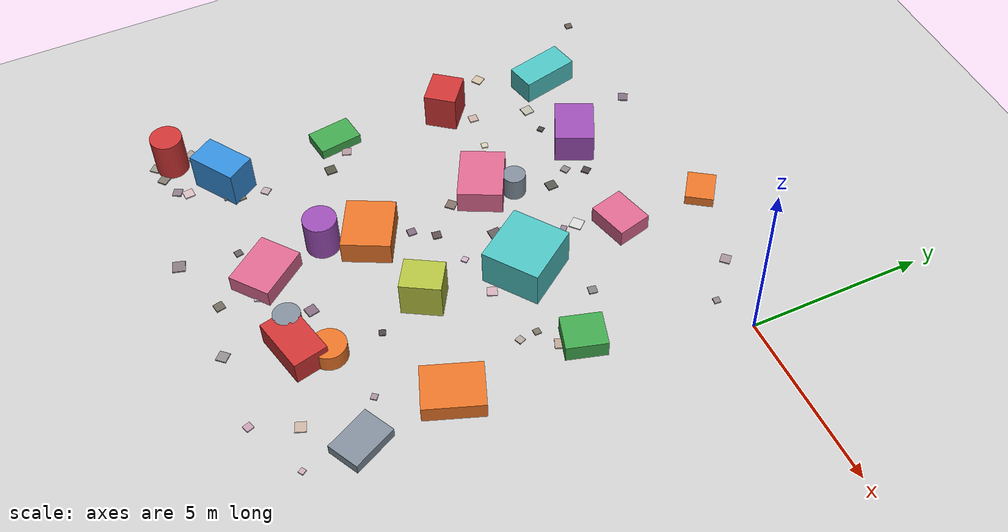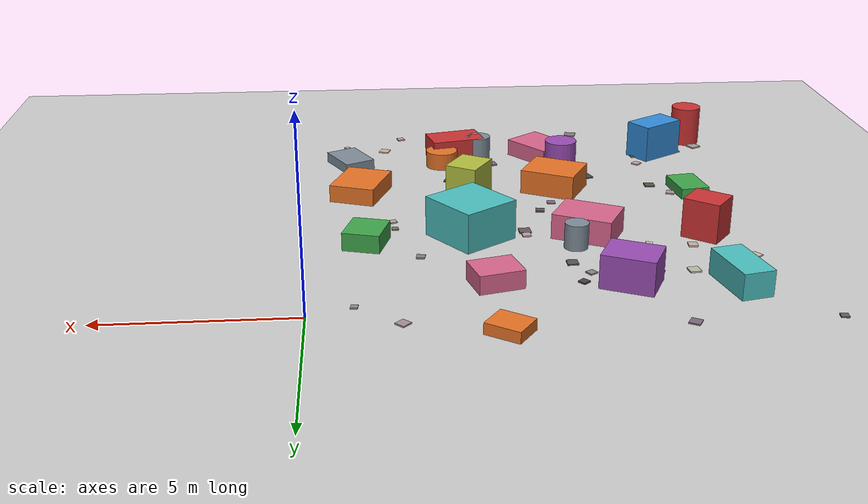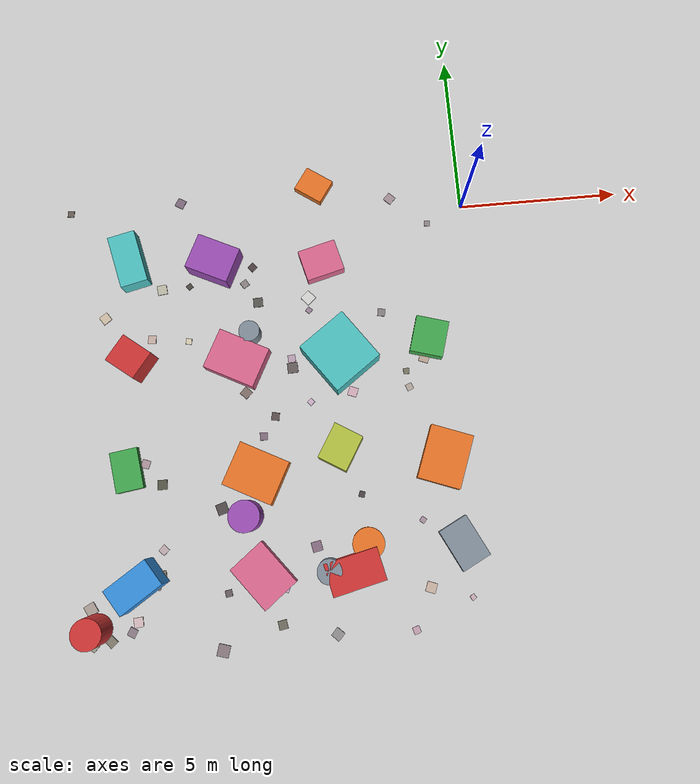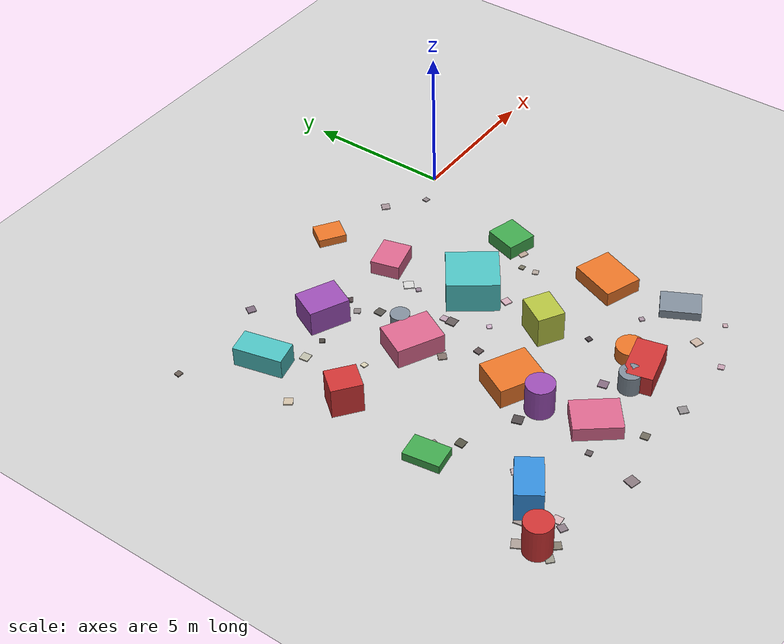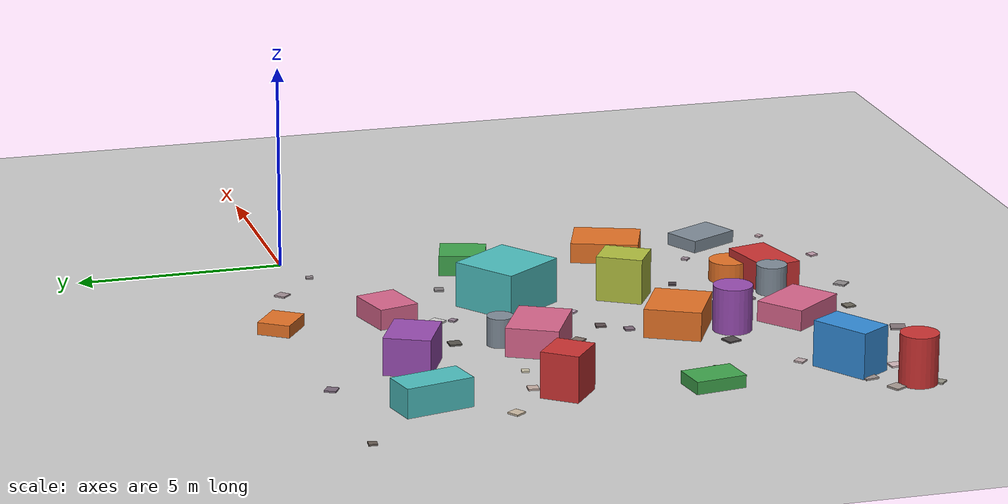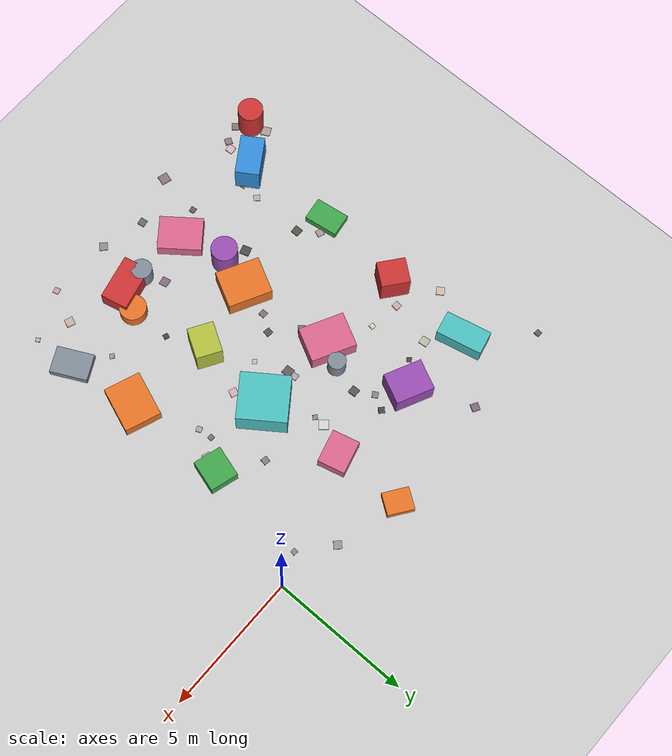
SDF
<sdf version="1.6">
 <world name="town_world">
  <model name="ground_plane">
   <static>true</static>
   <link name="link">
    <collision name="collision">
     <geometry><plane><normal>0 0 1</normal><size>60 60</size></plane></geometry>
     <surface><friction><ode><mu>1.0</mu><mu2>1.0</mu2></ode></friction></surface>
    </collision>
    <visual name="visual">
     <cast_shadows>false</cast_shadows>
     <geometry><plane><normal>0 0 1</normal><size>60 60</size></plane></geometry>
     <material>
      <script><uri>file://media/materials/scripts/gazebo.material</uri><name>Gazebo/CheckerBoard</name></script>
     </material>
    </visual>
   </link>
  </model>
  <model name="bld_0">
   <static>true</static>
   <pose>-10.68 -10.85 0.55 0 0 0.574</pose>
   <link name="l">
    <collision name="c"><geometry><box><size>1.45 0.87 1.10</size></box></geometry></collision>
    <visual name="v">
     <geometry><box><size>1.45 0.87 1.10</size></box></geometry>
     <material><ambient>0.2 0.55 0.85 1</ambient><diffuse>0.2 0.55 0.85 1</diffuse></material>
    </visual>
   </link>
  </model>
  <model name="bld_1">
   <static>true</static>
   <pose>-10.94 -7.49 0.15 0 0 0.142</pose>
   <link name="l">
    <collision name="c"><geometry><box><size>0.84 1.23 0.30</size></box></geometry></collision>
    <visual name="v">
     <geometry><box><size>0.84 1.23 0.30</size></box></geometry>
     <material><ambient>0.25 0.65 0.3 1</ambient><diffuse>0.25 0.65 0.3 1</diffuse></material>
    </visual>
   </link>
  </model>
  <model name="bld_2">
   <static>true</static>
   <pose>-10.58 -4.17 0.55 0 0 0.906</pose>
   <link name="l">
    <collision name="c"><geometry><box><size>0.92 1.02 1.10</size></box></geometry></collision>
    <visual name="v">
     <geometry><box><size>0.92 1.02 1.10</size></box></geometry>
     <material><ambient>0.8 0.2 0.2 1</ambient><diffuse>0.8 0.2 0.2 1</diffuse></material>
    </visual>
   </link>
  </model>
  <model name="bld_3">
   <static>true</static>
   <pose>-10.60 -1.02 0.35 0 0 0.226</pose>
   <link name="l">
    <collision name="c"><geometry><box><size>0.85 1.66 0.70</size></box></geometry></collision>
    <visual name="v">
     <geometry><box><size>0.85 1.66 0.70</size></box></geometry>
     <material><ambient>0.3 0.75 0.75 1</ambient><diffuse>0.3 0.75 0.75 1</diffuse></material>
    </visual>
   </link>
  </model>
  <model name="bld_8">
   <static>true</static>
   <pose>-7.02 -10.88 0.25 0 0 0.662</pose>
   <link name="l">
    <collision name="c"><geometry><box><size>1.22 1.56 0.50</size></box></geometry></collision>
    <visual name="v">
     <geometry><box><size>1.22 1.56 0.50</size></box></geometry>
     <material><ambient>0.85 0.4 0.55 1</ambient><diffuse>0.85 0.4 0.55 1</diffuse></material>
    </visual>
   </link>
  </model>
  <model name="bld_9">
   <static>true</static>
   <pose>-7.04 -7.92 0.35 0 0 1.092</pose>
   <link name="l">
    <collision name="c"><geometry><box><size>1.36 1.59 0.70</size></box></geometry></collision>
    <visual name="v">
     <geometry><box><size>1.36 1.59 0.70</size></box></geometry>
     <material><ambient>0.9 0.45 0.15 1</ambient><diffuse>0.9 0.45 0.15 1</diffuse></material>
    </visual>
   </link>
  </model>
  <model name="bld_10">
   <static>true</static>
   <pose>-7.41 -4.42 0.35 0 0 1.094</pose>
   <link name="l">
    <collision name="c"><geometry><box><size>1.26 1.64 0.70</size></box></geometry></collision>
    <visual name="v">
     <geometry><box><size>1.26 1.64 0.70</size></box></geometry>
     <material><ambient>0.85 0.4 0.55 1</ambient><diffuse>0.85 0.4 0.55 1</diffuse></material>
    </visual>
   </link>
  </model>
  <model name="bld_11">
   <static>true</static>
   <pose>-7.94 -1.27 0.45 0 0 1.125</pose>
   <link name="l">
    <collision name="c"><geometry><box><size>1.11 1.38 0.90</size></box></geometry></collision>
    <visual name="v">
     <geometry><box><size>1.11 1.38 0.90</size></box></geometry>
     <material><ambient>0.6 0.3 0.7 1</ambient><diffuse>0.6 0.3 0.7 1</diffuse></material>
    </visual>
   </link>
  </model>
  <model name="bld_16">
   <static>true</static>
   <pose>-4.34 -10.99 0.35 0 0 0.229</pose>
   <link name="l">
    <collision name="c"><geometry><box><size>1.63 0.98 0.70</size></box></geometry></collision>
    <visual name="v">
     <geometry><box><size>1.63 0.98 0.70</size></box></geometry>
     <material><ambient>0.8 0.2 0.2 1</ambient><diffuse>0.8 0.2 0.2 1</diffuse></material>
    </visual>
   </link>
  </model>
  <model name="bld_17">
   <static>true</static>
   <pose>-4.47 -7.39 0.55 0 0 1.028</pose>
   <link name="l">
    <collision name="c"><geometry><box><size>1.12 0.93 1.10</size></box></geometry></collision>
    <visual name="v">
     <geometry><box><size>1.12 0.93 1.10</size></box></geometry>
     <material><ambient>0.7 0.75 0.25 1</ambient><diffuse>0.7 0.75 0.25 1</diffuse></material>
    </visual>
   </link>
  </model>
  <model name="bld_18">
   <static>true</static>
   <pose>-4.26 -4.54 0.55 0 0 0.625</pose>
   <link name="l">
    <collision name="c"><geometry><box><size>1.67 1.75 1.10</size></box></geometry></collision>
    <visual name="v">
     <geometry><box><size>1.67 1.75 1.10</size></box></geometry>
     <material><ambient>0.3 0.75 0.75 1</ambient><diffuse>0.3 0.75 0.75 1</diffuse></material>
    </visual>
   </link>
  </model>
  <model name="bld_19">
   <static>true</static>
   <pose>-4.61 -1.52 0.25 0 0 0.255</pose>
   <link name="l">
    <collision name="c"><geometry><box><size>1.20 0.99 0.50</size></box></geometry></collision>
    <visual name="v">
     <geometry><box><size>1.20 0.99 0.50</size></box></geometry>
     <material><ambient>0.85 0.4 0.55 1</ambient><diffuse>0.85 0.4 0.55 1</diffuse></material>
    </visual>
   </link>
  </model>
  <model name="bld_20">
   <static>true</static>
   <pose>-4.66 1.05 0.15 0 0 0.964</pose>
   <link name="l">
    <collision name="c"><geometry><box><size>0.80 0.95 0.30</size></box></geometry></collision>
    <visual name="v">
     <geometry><box><size>0.80 0.95 0.30</size></box></geometry>
     <material><ambient>0.9 0.45 0.15 1</ambient><diffuse>0.9 0.45 0.15 1</diffuse></material>
    </visual>
   </link>
  </model>
  <model name="bld_24">
   <static>true</static>
   <pose>-1.05 -10.47 0.15 0 0 0.468</pose>
   <link name="l">
    <collision name="c"><geometry><box><size>0.95 1.34 0.30</size></box></geometry></collision>
    <visual name="v">
     <geometry><box><size>0.95 1.34 0.30</size></box></geometry>
     <material><ambient>0.5 0.55 0.6 1</ambient><diffuse>0.5 0.55 0.6 1</diffuse></material>
    </visual>
   </link>
  </model>
  <model name="bld_25">
   <static>true</static>
   <pose>-1.36 -7.91 0.25 0 0 1.212</pose>
   <link name="l">
    <collision name="c"><geometry><box><size>1.65 1.32 0.50</size></box></geometry></collision>
    <visual name="v">
     <geometry><box><size>1.65 1.32 0.50</size></box></geometry>
     <material><ambient>0.9 0.45 0.15 1</ambient><diffuse>0.9 0.45 0.15 1</diffuse></material>
    </visual>
   </link>
  </model>
  <model name="bld_26">
   <static>true</static>
   <pose>-1.47 -4.22 0.25 0 0 1.285</pose>
   <link name="l">
    <collision name="c"><geometry><box><size>1.13 1.02 0.50</size></box></geometry></collision>
    <visual name="v">
     <geometry><box><size>1.13 1.02 0.50</size></box></geometry>
     <material><ambient>0.25 0.65 0.3 1</ambient><diffuse>0.25 0.65 0.3 1</diffuse></material>
    </visual>
   </link>
  </model>
  <model name="landmark_0">
   <static>true</static>
   <pose>-12.00 -12.00 0.60 0 0 0</pose>
   <link name="l">
    <collision name="c">
     <geometry><cylinder><radius>0.45</radius><length>1.20</length></cylinder></geometry>
    </collision>
    <visual name="v">
     <geometry><cylinder><radius>0.45</radius><length>1.20</length></cylinder></geometry>
     <material><ambient>0.8 0.2 0.2 1</ambient><diffuse>0.8 0.2 0.2 1</diffuse></material>
    </visual>
   </link>
  </model>
  <model name="tank_1">
   <static>true</static>
   <pose>-7.41 -9.14 0.55 0 0 0</pose>
   <link name="l">
    <collision name="c">
     <geometry><cylinder><radius>0.47</radius><length>1.10</length></cylinder></geometry>
    </collision>
    <visual name="v">
     <geometry><cylinder><radius>0.47</radius><length>1.10</length></cylinder></geometry>
     <material><ambient>0.6 0.3 0.7 1</ambient><diffuse>0.6 0.3 0.7 1</diffuse></material>
    </visual>
   </link>
  </model>
  <model name="tank_3">
   <static>true</static>
   <pose>-5.08 -10.92 0.35 0 0 0</pose>
   <link name="l">
    <collision name="c">
     <geometry><cylinder><radius>0.37</radius><length>0.70</length></cylinder></geometry>
    </collision>
    <visual name="v">
     <geometry><cylinder><radius>0.37</radius><length>0.70</length></cylinder></geometry>
     <material><ambient>0.5 0.55 0.6 1</ambient><diffuse>0.5 0.55 0.6 1</diffuse></material>
    </visual>
   </link>
  </model>
  <model name="tank_4">
   <static>true</static>
   <pose>-3.88 -10.24 0.25 0 0 0</pose>
   <link name="l">
    <collision name="c">
     <geometry><cylinder><radius>0.48</radius><length>0.50</length></cylinder></geometry>
    </collision>
    <visual name="v">
     <geometry><cylinder><radius>0.48</radius><length>0.50</length></cylinder></geometry>
     <material><ambient>0.9 0.45 0.15 1</ambient><diffuse>0.9 0.45 0.15 1</diffuse></material>
    </visual>
   </link>
  </model>
  <model name="tank_5">
   <static>true</static>
   <pose>-6.97 -3.62 0.35 0 0 0</pose>
   <link name="l">
    <collision name="c">
     <geometry><cylinder><radius>0.32</radius><length>0.70</length></cylinder></geometry>
    </collision>
    <visual name="v">
     <geometry><cylinder><radius>0.32</radius><length>0.70</length></cylinder></geometry>
     <material><ambient>0.5 0.55 0.6 1</ambient><diffuse>0.5 0.55 0.6 1</diffuse></material>
    </visual>
   </link>
  </model>
  <model name="ft_3">
   <static>true</static>
   <pose>-10.79 -11.91 0.02 0 0 0.080</pose>
   <link name="l">
    <collision name="c"><geometry><box><size>0.28 0.28 0.04</size></box></geometry></collision>
    <visual name="v">
     <geometry><box><size>0.28 0.28 0.04</size></box></geometry>
     <material>
      <ambient>0.8257096429388961 0.7227631809551837 0.7351104986890425 1</ambient>
      <diffuse>0.8257096429388961 0.7227631809551837 0.7351104986890425 1</diffuse>
     </material>
    </visual>
   </link>
  </model>
  <model name="ft_4">
   <static>true</static>
   <pose>-12.51 0.82 0.02 0 0 1.464</pose>
   <link name="l">
    <collision name="c"><geometry><box><size>0.20 0.20 0.04</size></box></geometry></collision>
    <visual name="v">
     <geometry><box><size>0.20 0.20 0.04</size></box></geometry>
     <material>
      <ambient>0.4082757368831976 0.36393278863417755 0.3323455571166107 1</ambient>
      <diffuse>0.4082757368831976 0.36393278863417755 0.3323455571166107 1</diffuse>
     </material>
    </visual>
   </link>
  </model>
  <model name="ft_9">
   <static>true</static>
   <pose>-10.41 -7.34 0.02 0 0 1.204</pose>
   <link name="l">
    <collision name="c"><geometry><box><size>0.25 0.25 0.04</size></box></geometry></collision>
    <visual name="v">
     <geometry><box><size>0.25 0.25 0.04</size></box></geometry>
     <material>
      <ambient>0.6753225528442965 0.578824841034194 0.6031842747153561 1</ambient>
      <diffuse>0.6753225528442965 0.578824841034194 0.6031842747153561 1</diffuse>
     </material>
    </visual>
   </link>
  </model>
  <model name="ft_13">
   <static>true</static>
   <pose>-10.07 -3.51 0.02 0 0 1.491</pose>
   <link name="l">
    <collision name="c"><geometry><box><size>0.25 0.25 0.04</size></box></geometry></collision>
    <visual name="v">
     <geometry><box><size>0.25 0.25 0.04</size></box></geometry>
     <material>
      <ambient>0.77568713941935 0.6816863497658909 0.6452266882276717 1</ambient>
      <diffuse>0.77568713941935 0.6816863497658909 0.6452266882276717 1</diffuse>
     </material>
    </visual>
   </link>
  </model>
  <model name="ft_15">
   <static>true</static>
   <pose>-4.56 -4.20 0.02 0 0 1.162</pose>
   <link name="l">
    <collision name="c"><geometry><box><size>0.23 0.23 0.04</size></box></geometry></collision>
    <visual name="v">
     <geometry><box><size>0.23 0.23 0.04</size></box></geometry>
     <material>
      <ambient>0.8139286157178828 0.6830067551446627 0.6530510045945481 1</ambient>
      <diffuse>0.8139286157178828 0.6830067551446627 0.6530510045945481 1</diffuse>
     </material>
    </visual>
   </link>
  </model>
  <model name="ft_16">
   <static>true</static>
   <pose>-6.42 -11.31 0.02 0 0 1.186</pose>
   <link name="l">
    <collision name="c"><geometry><box><size>0.23 0.23 0.04</size></box></geometry></collision>
    <visual name="v">
     <geometry><box><size>0.23 0.23 0.04</size></box></geometry>
     <material>
      <ambient>0.7719831567518859 0.6293825349514359 0.7604675595468173 1</ambient>
      <diffuse>0.7719831567518859 0.6293825349514359 0.7604675595468173 1</diffuse>
     </material>
    </visual>
   </link>
  </model>
  <model name="ft_18">
   <static>true</static>
   <pose>-1.66 -4.79 0.02 0 0 1.196</pose>
   <link name="l">
    <collision name="c"><geometry><box><size>0.30 0.30 0.04</size></box></geometry></collision>
    <visual name="v">
     <geometry><box><size>0.30 0.30 0.04</size></box></geometry>
     <material>
      <ambient>0.7210856048293348 0.6385570164520308 0.5810524122165364 1</ambient>
      <diffuse>0.7210856048293348 0.6385570164520308 0.5810524122165364 1</diffuse>
     </material>
    </visual>
   </link>
  </model>
  <model name="ft_21">
   <static>true</static>
   <pose>-2.21 -5.67 0.02 0 0 0.375</pose>
   <link name="l">
    <collision name="c"><geometry><box><size>0.20 0.20 0.04</size></box></geometry></collision>
    <visual name="v">
     <geometry><box><size>0.20 0.20 0.04</size></box></geometry>
     <material>
      <ambient>0.6932471676601298 0.6451105557544258 0.61091841863146 1</ambient>
      <diffuse>0.6932471676601298 0.6451105557544258 0.61091841863146 1</diffuse>
     </material>
    </visual>
   </link>
  </model>
  <model name="ft_28">
   <static>true</static>
   <pose>-9.69 -1.94 0.02 0 0 0.115</pose>
   <link name="l">
    <collision name="c"><geometry><box><size>0.30 0.30 0.04</size></box></geometry></collision>
    <visual name="v">
     <geometry><box><size>0.30 0.30 0.04</size></box></geometry>
     <material>
      <ambient>0.7325495606955957 0.7279024517637563 0.6578037728114212 1</ambient>
      <diffuse>0.7325495606955957 0.7279024517637563 0.6578037728114212 1</diffuse>
     </material>
    </visual>
   </link>
  </model>
  <model name="ft_34">
   <static>true</static>
   <pose>-5.76 -4.77 0.02 0 0 0.046</pose>
   <link name="l">
    <collision name="c"><geometry><box><size>0.32 0.32 0.04</size></box></geometry></collision>
    <visual name="v">
     <geometry><box><size>0.32 0.32 0.04</size></box></geometry>
     <material>
      <ambient>0.3954145601777921 0.3579512218125734 0.3595901778080671 1</ambient>
      <diffuse>0.3954145601777921 0.3579512218125734 0.3595901778080671 1</diffuse>
     </material>
    </visual>
   </link>
  </model>
  <model name="ft_36">
   <static>true</static>
   <pose>-7.08 -1.97 0.02 0 0 0.569</pose>
   <link name="l">
    <collision name="c"><geometry><box><size>0.22 0.22 0.04</size></box></geometry></collision>
    <visual name="v">
     <geometry><box><size>0.22 0.22 0.04</size></box></geometry>
     <material>
      <ambient>0.5457660706375425 0.5125641499923063 0.5150211294952293 1</ambient>
      <diffuse>0.5457660706375425 0.5125641499923063 0.5150211294952293 1</diffuse>
     </material>
    </visual>
   </link>
  </model>
  <model name="ft_37">
   <static>true</static>
   <pose>-2.69 -12.82 0.02 0 0 0.315</pose>
   <link name="l">
    <collision name="c"><geometry><box><size>0.21 0.21 0.04</size></box></geometry></collision>
    <visual name="v">
     <geometry><box><size>0.21 0.21 0.04</size></box></geometry>
     <material>
      <ambient>0.7570898331919836 0.6158823521154363 0.6807290883607733 1</ambient>
      <diffuse>0.7570898331919836 0.6158823521154363 0.6807290883607733 1</diffuse>
     </material>
    </visual>
   </link>
  </model>
  <model name="ft_40">
   <static>true</static>
   <pose>-11.59 -12.39 0.02 0 0 0.706</pose>
   <link name="l">
    <collision name="c"><geometry><box><size>0.27 0.27 0.04</size></box></geometry></collision>
    <visual name="v">
     <geometry><box><size>0.27 0.27 0.04</size></box></geometry>
     <material>
      <ambient>0.49923096024322744 0.47026144523144514 0.4177669339591884 1</ambient>
      <diffuse>0.49923096024322744 0.47026144523144514 0.4177669339591884 1</diffuse>
     </material>
    </visual>
   </link>
  </model>
  <model name="ft_43">
   <static>true</static>
   <pose>-10.17 -10.97 0.02 0 0 1.191</pose>
   <link name="l">
    <collision name="c"><geometry><box><size>0.17 0.17 0.04</size></box></geometry></collision>
    <visual name="v">
     <geometry><box><size>0.17 0.17 0.04</size></box></geometry>
     <material>
      <ambient>0.5021098954477079 0.4905787065697542 0.4580375924354526 1</ambient>
      <diffuse>0.5021098954477079 0.4905787065697542 0.4580375924354526 1</diffuse>
     </material>
    </visual>
   </link>
  </model>
  <model name="ft_53">
   <static>true</static>
   <pose>-8.82 -1.91 0.02 0 0 0.661</pose>
   <link name="l">
    <collision name="c"><geometry><box><size>0.17 0.17 0.04</size></box></geometry></collision>
    <visual name="v">
     <geometry><box><size>0.17 0.17 0.04</size></box></geometry>
     <material>
      <ambient>0.29329902648132133 0.27127822786717803 0.24686046605223055 1</ambient>
      <diffuse>0.29329902648132133 0.27127822786717803 0.24686046605223055 1</diffuse>
     </material>
    </visual>
   </link>
  </model>
  <model name="ft_56">
   <static>true</static>
   <pose>-6.39 -6.23 0.02 0 0 1.425</pose>
   <link name="l">
    <collision name="c"><geometry><box><size>0.24 0.24 0.04</size></box></geometry></collision>
    <visual name="v">
     <geometry><box><size>0.24 0.24 0.04</size></box></geometry>
     <material>
      <ambient>0.361441851758988 0.30617768249937494 0.30949211069033156 1</ambient>
      <diffuse>0.361441851758988 0.30617768249937494 0.30949211069033156 1</diffuse>
     </material>
    </visual>
   </link>
  </model>
  <model name="ft_57">
   <static>true</static>
   <pose>-8.11 -11.32 0.02 0 0 0.158</pose>
   <link name="l">
    <collision name="c"><geometry><box><size>0.20 0.20 0.04</size></box></geometry></collision>
    <visual name="v">
     <geometry><box><size>0.20 0.20 0.04</size></box></geometry>
     <material>
      <ambient>0.3975695364504658 0.35990449406493663 0.36971109602007446 1</ambient>
      <diffuse>0.3975695364504658 0.35990449406493663 0.36971109602007446 1</diffuse>
     </material>
    </visual>
   </link>
  </model>
  <model name="ft_58">
   <static>true</static>
   <pose>-0.94 -12.04 0.02 0 0 0.587</pose>
   <link name="l">
    <collision name="c"><geometry><box><size>0.15 0.15 0.04</size></box></geometry></collision>
    <visual name="v">
     <geometry><box><size>0.15 0.15 0.04</size></box></geometry>
     <material>
      <ambient>0.7796950138469161 0.6597956290427879 0.6936630227227756 1</ambient>
      <diffuse>0.7796950138469161 0.6597956290427879 0.6936630227227756 1</diffuse>
     </material>
    </visual>
   </link>
  </model>
  <model name="ft_63">
   <static>true</static>
   <pose>-10.97 -12.18 0.02 0 0 1.043</pose>
   <link name="l">
    <collision name="c"><geometry><box><size>0.25 0.25 0.04</size></box></geometry></collision>
    <visual name="v">
     <geometry><box><size>0.25 0.25 0.04</size></box></geometry>
     <material>
      <ambient>0.5401042181101638 0.476174247109453 0.5180511009754373 1</ambient>
      <diffuse>0.5401042181101638 0.476174247109453 0.5180511009754373 1</diffuse>
     </material>
    </visual>
   </link>
  </model>
  <model name="ft_64">
   <static>true</static>
   <pose>-8.98 0.88 0.02 0 0 1.048</pose>
   <link name="l">
    <collision name="c"><geometry><box><size>0.28 0.28 0.04</size></box></geometry></collision>
    <visual name="v">
     <geometry><box><size>0.28 0.28 0.04</size></box></geometry>
     <material>
      <ambient>0.4886632786485816 0.4174324814224434 0.48751381938588656 1</ambient>
      <diffuse>0.4886632786485816 0.4174324814224434 0.48751381938588656 1</diffuse>
     </material>
    </visual>
   </link>
  </model>
  <model name="ft_65">
   <static>true</static>
   <pose>-2.14 -11.66 0.02 0 0 1.204</pose>
   <link name="l">
    <collision name="c"><geometry><box><size>0.30 0.30 0.04</size></box></geometry></collision>
    <visual name="v">
     <geometry><box><size>0.30 0.30 0.04</size></box></geometry>
     <material>
      <ambient>0.7802169249527828 0.6887879890117401 0.6270155864824466 1</ambient>
      <diffuse>0.7802169249527828 0.6887879890117401 0.6270155864824466 1</diffuse>
     </material>
    </visual>
   </link>
  </model>
  <model name="ft_67">
   <static>true</static>
   <pose>-10.05 -10.65 0.02 0 0 0.081</pose>
   <link name="l">
    <collision name="c"><geometry><box><size>0.27 0.27 0.04</size></box></geometry></collision>
    <visual name="v">
     <geometry><box><size>0.27 0.27 0.04</size></box></geometry>
     <material>
      <ambient>0.4688362723331432 0.447556214873242 0.387256425720756 1</ambient>
      <diffuse>0.4688362723331432 0.447556214873242 0.387256425720756 1</diffuse>
     </material>
    </visual>
   </link>
  </model>
  <model name="ft_69">
   <static>true</static>
   <pose>-3.95 -8.79 0.02 0 0 1.244</pose>
   <link name="l">
    <collision name="c"><geometry><box><size>0.18 0.18 0.04</size></box></geometry></collision>
    <visual name="v">
     <geometry><box><size>0.18 0.18 0.04</size></box></geometry>
     <material>
      <ambient>0.2902580444907822 0.25448285530280873 0.2759515632184901 1</ambient>
      <diffuse>0.2902580444907822 0.25448285530280873 0.2759515632184901 1</diffuse>
     </material>
    </visual>
   </link>
  </model>
  <model name="ft_73">
   <static>true</static>
   <pose>-8.93 -3.66 0.02 0 0 1.388</pose>
   <link name="l">
    <collision name="c"><geometry><box><size>0.18 0.18 0.04</size></box></geometry></collision>
    <visual name="v">
     <geometry><box><size>0.18 0.18 0.04</size></box></geometry>
     <material>
      <ambient>0.8324153783539653 0.8017241800073087 0.6979962256476694 1</ambient>
      <diffuse>0.8324153783539653 0.8017241800073087 0.6979962256476694 1</diffuse>
     </material>
    </visual>
   </link>
  </model>
  <model name="ft_76">
   <static>true</static>
   <pose>-8.35 -12.91 0.02 0 0 1.286</pose>
   <link name="l">
    <collision name="c"><geometry><box><size>0.35 0.35 0.04</size></box></geometry></collision>
    <visual name="v">
     <geometry><box><size>0.35 0.35 0.04</size></box></geometry>
     <material>
      <ambient>0.5291638816978823 0.4706191870526783 0.488796642330154 1</ambient>
      <diffuse>0.5291638816978823 0.4706191870526783 0.488796642330154 1</diffuse>
     </material>
    </visual>
   </link>
  </model>
  <model name="ft_84">
   <static>true</static>
   <pose>-5.77 -4.48 0.02 0 0 0.076</pose>
   <link name="l">
    <collision name="c"><geometry><box><size>0.23 0.23 0.04</size></box></geometry></collision>
    <visual name="v">
     <geometry><box><size>0.23 0.23 0.04</size></box></geometry>
     <material>
      <ambient>0.7252744948187588 0.6185635320196808 0.6916603034271328 1</ambient>
      <diffuse>0.7252744948187588 0.6185635320196808 0.6916603034271328 1</diffuse>
     </material>
    </visual>
   </link>
  </model>
  <model name="ft_87">
   <static>true</static>
   <pose>-4.40 -10.88 0.02 0 0 0.810</pose>
   <link name="l">
    <collision name="c"><geometry><box><size>0.20 0.20 0.04</size></box></geometry></collision>
    <visual name="v">
     <geometry><box><size>0.20 0.20 0.04</size></box></geometry>
     <material>
      <ambient>0.619224188075638 0.6140202187523768 0.5320849047405385 1</ambient>
      <diffuse>0.619224188075638 0.6140202187523768 0.5320849047405385 1</diffuse>
     </material>
    </visual>
   </link>
  </model>
  <model name="ft_89">
   <static>true</static>
   <pose>-7.24 -5.43 0.02 0 0 0.767</pose>
   <link name="l">
    <collision name="c"><geometry><box><size>0.28 0.28 0.04</size></box></geometry></collision>
    <visual name="v">
     <geometry><box><size>0.28 0.28 0.04</size></box></geometry>
     <material>
      <ambient>0.5006121792465954 0.4369442216815559 0.4052732294144433 1</ambient>
      <diffuse>0.5006121792465954 0.4369442216815559 0.4052732294144433 1</diffuse>
     </material>
    </visual>
   </link>
  </model>
  <model name="ft_91">
   <static>true</static>
   <pose>-2.26 -5.17 0.02 0 0 0.022</pose>
   <link name="l">
    <collision name="c"><geometry><box><size>0.18 0.18 0.04</size></box></geometry></collision>
    <visual name="v">
     <geometry><box><size>0.18 0.18 0.04</size></box></geometry>
     <material>
      <ambient>0.4697407184120843 0.45362595317010057 0.3906949520494885 1</ambient>
      <diffuse>0.4697407184120843 0.45362595317010057 0.3906949520494885 1</diffuse>
     </material>
    </visual>
   </link>
  </model>
  <model name="ft_95">
   <static>true</static>
   <pose>-8.17 -8.86 0.02 0 0 0.310</pose>
   <link name="l">
    <collision name="c"><geometry><box><size>0.33 0.33 0.04</size></box></geometry></collision>
    <visual name="v">
     <geometry><box><size>0.33 0.33 0.04</size></box></geometry>
     <material>
      <ambient>0.31295069908656215 0.28870575672426474 0.291469757594112 1</ambient>
      <diffuse>0.31295069908656215 0.28870575672426474 0.291469757594112 1</diffuse>
     </material>
    </visual>
   </link>
  </model>
  <model name="ft_96">
   <static>true</static>
   <pose>-2.26 0.47 0.02 0 0 0.798</pose>
   <link name="l">
    <collision name="c"><geometry><box><size>0.28 0.28 0.04</size></box></geometry></collision>
    <visual name="v">
     <geometry><box><size>0.28 0.28 0.04</size></box></geometry>
     <material>
      <ambient>0.6385580240558235 0.5638779630683604 0.5891570870635069 1</ambient>
      <diffuse>0.6385580240558235 0.5638779630683604 0.5891570870635069 1</diffuse>
     </material>
    </visual>
   </link>
  </model>
  <model name="ft_125">
   <static>true</static>
   <pose>-5.27 -5.88 0.02 0 0 0.728</pose>
   <link name="l">
    <collision name="c"><geometry><box><size>0.17 0.17 0.04</size></box></geometry></collision>
    <visual name="v">
     <geometry><box><size>0.17 0.17 0.04</size></box></geometry>
     <material>
      <ambient>0.7968415011772649 0.6822245216118005 0.7785536879321882 1</ambient>
      <diffuse>0.7968415011772649 0.6822245216118005 0.7785536879321882 1</diffuse>
     </material>
    </visual>
   </link>
  </model>
  <model name="ft_129">
   <static>true</static>
   <pose>-7.06 -8.28 0.02 0 0 1.405</pose>
   <link name="l">
    <collision name="c"><geometry><box><size>0.17 0.17 0.04</size></box></geometry></collision>
    <visual name="v">
     <geometry><box><size>0.17 0.17 0.04</size></box></geometry>
     <material>
      <ambient>0.5095173089788001 0.4340891902523571 0.47901252589276433 1</ambient>
      <diffuse>0.5095173089788001 0.4340891902523571 0.47901252589276433 1</diffuse>
     </material>
    </visual>
   </link>
  </model>
  <model name="ft_130">
   <static>true</static>
   <pose>-6.70 -2.60 0.02 0 0 0.031</pose>
   <link name="l">
    <collision name="c"><geometry><box><size>0.29 0.29 0.04</size></box></geometry></collision>
    <visual name="v">
     <geometry><box><size>0.29 0.29 0.04</size></box></geometry>
     <material>
      <ambient>0.34387503676143727 0.3335203718576284 0.30830072366751865 1</ambient>
      <diffuse>0.34387503676143727 0.3335203718576284 0.30830072366751865 1</diffuse>
     </material>
    </visual>
   </link>
  </model>
  <model name="ft_133">
   <static>true</static>
   <pose>-7.80 -3.95 0.02 0 0 0.025</pose>
   <link name="l">
    <collision name="c"><geometry><box><size>0.32 0.32 0.04</size></box></geometry></collision>
    <visual name="v">
     <geometry><box><size>0.32 0.32 0.04</size></box></geometry>
     <material>
      <ambient>0.5240708151803999 0.4407416606311509 0.4691204731938139 1</ambient>
      <diffuse>0.5240708151803999 0.4407416606311509 0.4691204731938139 1</diffuse>
     </material>
    </visual>
   </link>
  </model>
  <model name="ft_136">
   <static>true</static>
   <pose>-11.40 -11.05 0.02 0 0 0.172</pose>
   <link name="l">
    <collision name="c"><geometry><box><size>0.33 0.33 0.04</size></box></geometry></collision>
    <visual name="v">
     <geometry><box><size>0.33 0.33 0.04</size></box></geometry>
     <material>
      <ambient>0.6271388636451336 0.586360301164613 0.5744811806603168 1</ambient>
      <diffuse>0.6271388636451336 0.586360301164613 0.5744811806603168 1</diffuse>
     </material>
    </visual>
   </link>
  </model>
  <model name="ft_137">
   <static>true</static>
   <pose>-5.11 -2.59 0.02 0 0 0.726</pose>
   <link name="l">
    <collision name="c"><geometry><box><size>0.34 0.34 0.04</size></box></geometry></collision>
    <visual name="v">
     <geometry><box><size>0.34 0.34 0.04</size></box></geometry>
     <material>
      <ambient>0.8329006592284732 0.8319395341800009 0.8263792995638276 1</ambient>
      <diffuse>0.8329006592284732 0.8319395341800009 0.8263792995638276 1</diffuse>
     </material>
    </visual>
   </link>
  </model>
  <model name="ft_143">
   <static>true</static>
   <pose>-5.12 -2.99 0.02 0 0 0.833</pose>
   <link name="l">
    <collision name="c"><geometry><box><size>0.17 0.17 0.04</size></box></geometry></collision>
    <visual name="v">
     <geometry><box><size>0.17 0.17 0.04</size></box></geometry>
     <material>
      <ambient>0.5887535791358618 0.5092366247012886 0.5819961827466864 1</ambient>
      <diffuse>0.5887535791358618 0.5092366247012886 0.5819961827466864 1</diffuse>
     </material>
    </visual>
   </link>
  </model>
  <model name="ft_148">
   <static>true</static>
   <pose>-9.96 -9.92 0.02 0 0 0.760</pose>
   <link name="l">
    <collision name="c"><geometry><box><size>0.23 0.23 0.04</size></box></geometry></collision>
    <visual name="v">
     <geometry><box><size>0.23 0.23 0.04</size></box></geometry>
     <material>
      <ambient>0.7462323254615288 0.6676155264894551 0.680146449982171 1</ambient>
      <diffuse>0.7462323254615288 0.6676155264894551 0.680146449982171 1</diffuse>
     </material>
    </visual>
   </link>
  </model>
  <model name="ft_153">
   <static>true</static>
   <pose>-2.19 -9.70 0.02 0 0 0.870</pose>
   <link name="l">
    <collision name="c"><geometry><box><size>0.17 0.17 0.04</size></box></geometry></collision>
    <visual name="v">
     <geometry><box><size>0.17 0.17 0.04</size></box></geometry>
     <material>
      <ambient>0.645414124575965 0.5603887401429634 0.6168253759333795 1</ambient>
      <diffuse>0.645414124575965 0.5603887401429634 0.6168253759333795 1</diffuse>
     </material>
    </visual>
   </link>
  </model>
  <model name="ft_156">
   <static>true</static>
   <pose>-9.93 -8.00 0.02 0 0 1.564</pose>
   <link name="l">
    <collision name="c"><geometry><box><size>0.29 0.29 0.04</size></box></geometry></collision>
    <visual name="v">
     <geometry><box><size>0.29 0.29 0.04</size></box></geometry>
     <material>
      <ambient>0.3265424203267 0.3247627450241891 0.2669534066773989 1</ambient>
      <diffuse>0.3265424203267 0.3247627450241891 0.2669534066773989 1</diffuse>
     </material>
    </visual>
   </link>
  </model>
  <model name="ft_162">
   <static>true</static>
   <pose>-12.11 -12.47 0.02 0 0 0.820</pose>
   <link name="l">
    <collision name="c"><geometry><box><size>0.26 0.26 0.04</size></box></geometry></collision>
    <visual name="v">
     <geometry><box><size>0.26 0.26 0.04</size></box></geometry>
     <material>
      <ambient>0.5969673481607072 0.5866795257164624 0.5370037780041629 1</ambient>
      <diffuse>0.5969673481607072 0.5866795257164624 0.5370037780041629 1</diffuse>
     </material>
    </visual>
   </link>
  </model>
  <model name="ft_169">
   <static>true</static>
   <pose>-12.17 -11.43 0.02 0 0 0.491</pose>
   <link name="l">
    <collision name="c"><geometry><box><size>0.33 0.33 0.04</size></box></geometry></collision>
    <visual name="v">
     <geometry><box><size>0.33 0.33 0.04</size></box></geometry>
     <material>
      <ambient>0.6619835621893857 0.6114376397892561 0.581082377447511 1</ambient>
      <diffuse>0.6619835621893857 0.6114376397892561 0.581082377447511 1</diffuse>
     </material>
    </visual>
   </link>
  </model>
  <model name="ft_179">
   <static>true</static>
   <pose>-11.50 -2.72 0.02 0 0 0.604</pose>
   <link name="l">
    <collision name="c"><geometry><box><size>0.29 0.29 0.04</size></box></geometry></collision>
    <visual name="v">
     <geometry><box><size>0.29 0.29 0.04</size></box></geometry>
     <material>
      <ambient>0.8055993970695194 0.7389583363229187 0.6459891493196812 1</ambient>
      <diffuse>0.8055993970695194 0.7389583363229187 0.6459891493196812 1</diffuse>
     </material>
    </visual>
   </link>
  </model>
  <model name="ft_193">
   <static>true</static>
   <pose>-2.86 -3.25 0.02 0 0 1.401</pose>
   <link name="l">
    <collision name="c"><geometry><box><size>0.23 0.23 0.04</size></box></geometry></collision>
    <visual name="v">
     <geometry><box><size>0.23 0.23 0.04</size></box></geometry>
     <material>
      <ambient>0.5148308988144582 0.49501547400657697 0.5060065406834529 1</ambient>
      <diffuse>0.5148308988144582 0.49501547400657697 0.5060065406834529 1</diffuse>
     </material>
    </visual>
   </link>
  </model>
  <model name="ft_198">
   <static>true</static>
   <pose>-6.58 -12.34 0.02 0 0 0.172</pose>
   <link name="l">
    <collision name="c"><geometry><box><size>0.26 0.26 0.04</size></box></geometry></collision>
    <visual name="v">
     <geometry><box><size>0.26 0.26 0.04</size></box></geometry>
     <material>
      <ambient>0.42793063074875853 0.41116811109327805 0.36465442332519993 1</ambient>
      <diffuse>0.42793063074875853 0.41116811109327805 0.36465442332519993 1</diffuse>
     </material>
    </visual>
   </link>
  </model>
  <model name="ft_199">
   <static>true</static>
   <pose>-1.14 -0.46 0.02 0 0 1.453</pose>
   <link name="l">
    <collision name="c"><geometry><box><size>0.18 0.18 0.04</size></box></geometry></collision>
    <visual name="v">
     <geometry><box><size>0.18 0.18 0.04</size></box></geometry>
     <material>
      <ambient>0.5580745893278103 0.5168887690648902 0.5343680922840697 1</ambient>
      <diffuse>0.5580745893278103 0.5168887690648902 0.5343680922840697 1</diffuse>
     </material>
    </visual>
   </link>
  </model>
  <model name="ft_201">
   <static>true</static>
   <pose>-6.79 -6.81 0.02 0 0 1.536</pose>
   <link name="l">
    <collision name="c"><geometry><box><size>0.23 0.23 0.04</size></box></geometry></collision>
    <visual name="v">
     <geometry><box><size>0.23 0.23 0.04</size></box></geometry>
     <material>
      <ambient>0.4993815968760824 0.4157045859042522 0.48263465439973535 1</ambient>
      <diffuse>0.4993815968760824 0.4157045859042522 0.48263465439973535 1</diffuse>
     </material>
    </visual>
   </link>
  </model>
  <model name="ft_206">
   <static>true</static>
   <pose>-4.99 -12.74 0.02 0 0 0.814</pose>
   <link name="l">
    <collision name="c"><geometry><box><size>0.29 0.29 0.04</size></box></geometry></collision>
    <visual name="v">
     <geometry><box><size>0.29 0.29 0.04</size></box></geometry>
     <material>
      <ambient>0.5617371920114292 0.5438815635418932 0.5523278778973716 1</ambient>
      <diffuse>0.5617371920114292 0.5438815635418932 0.5523278778973716 1</diffuse>
     </material>
    </visual>
   </link>
  </model>
  <model name="ft_207">
   <static>true</static>
   <pose>-3.96 -5.67 0.02 0 0 1.198</pose>
   <link name="l">
    <collision name="c"><geometry><box><size>0.28 0.28 0.04</size></box></geometry></collision>
    <visual name="v">
     <geometry><box><size>0.28 0.28 0.04</size></box></geometry>
     <material>
      <ambient>0.8173854805216958 0.6686752688583225 0.7208549973468183 1</ambient>
      <diffuse>0.8173854805216958 0.6686752688583225 0.7208549973468183 1</diffuse>
     </material>
    </visual>
   </link>
  </model>
  <model name="ft_211">
   <static>true</static>
   <pose>-5.42 -10.20 0.02 0 0 0.211</pose>
   <link name="l">
    <collision name="c"><geometry><box><size>0.30 0.30 0.04</size></box></geometry></collision>
    <visual name="v">
     <geometry><box><size>0.30 0.30 0.04</size></box></geometry>
     <material>
      <ambient>0.5178633206187817 0.41694645019535836 0.49761508730424503 1</ambient>
      <diffuse>0.5178633206187817 0.41694645019535836 0.49761508730424503 1</diffuse>
     </material>
    </visual>
   </link>
  </model>
  <model name="ft_212">
   <static>true</static>
   <pose>-6.67 -10.70 0.02 0 0 1.500</pose>
   <link name="l">
    <collision name="c"><geometry><box><size>0.27 0.27 0.04</size></box></geometry></collision>
    <visual name="v">
     <geometry><box><size>0.27 0.27 0.04</size></box></geometry>
     <material>
      <ambient>0.3507282589495573 0.30246194108193875 0.31953871274556755 1</ambient>
      <diffuse>0.3507282589495573 0.30246194108193875 0.31953871274556755 1</diffuse>
     </material>
    </visual>
   </link>
  </model>
  <model name="ft_214">
   <static>true</static>
   <pose>-6.80 -1.45 0.02 0 0 0.730</pose>
   <link name="l">
    <collision name="c"><geometry><box><size>0.22 0.22 0.04</size></box></geometry></collision>
    <visual name="v">
     <geometry><box><size>0.22 0.22 0.04</size></box></geometry>
     <material>
      <ambient>0.30634376876249075 0.2560403675273165 0.2618021856370359 1</ambient>
      <diffuse>0.30634376876249075 0.2560403675273165 0.2618021856370359 1</diffuse>
     </material>
    </visual>
   </link>
  </model>
 </world>
</sdf>
